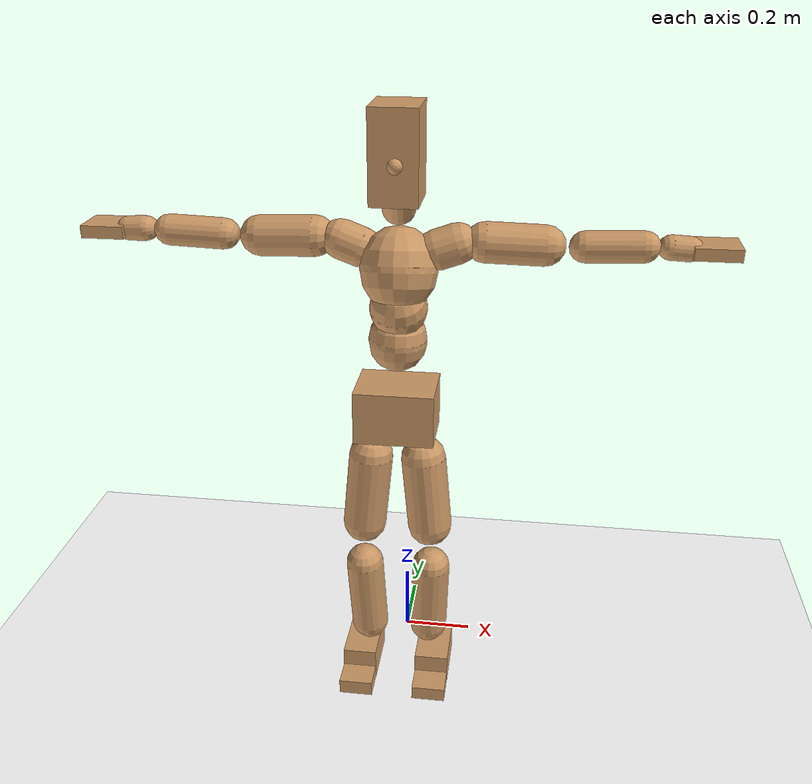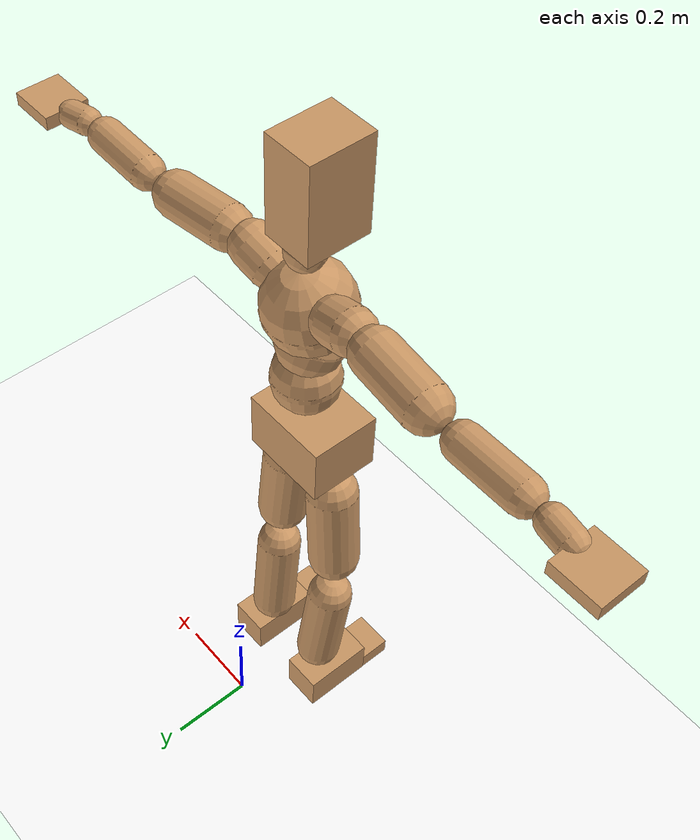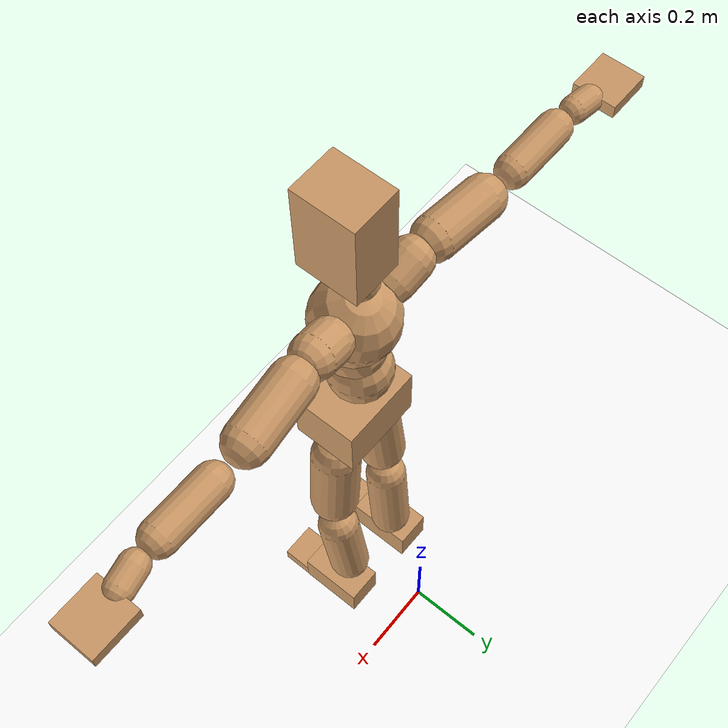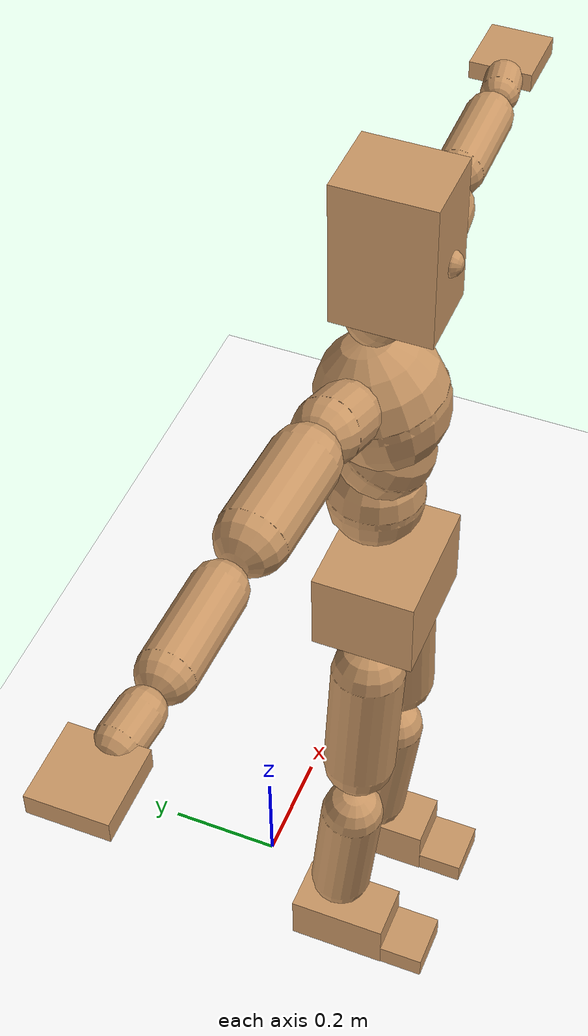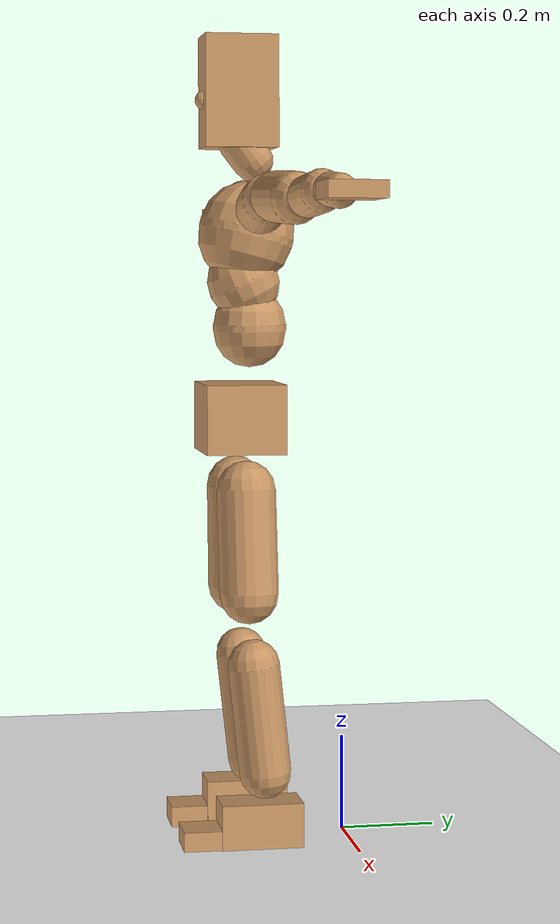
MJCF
<mujoco model="humanoid">
  <option integrator="implicitfast" />

  <visual>
    <global offwidth="1280" offheight="960" />
    <headlight active="1" ambient="0.34 0.34 0.34" diffuse="0.5 0.5 0.5" />
  </visual>

  <default>
    <joint damping="2" stiffness="2" armature="0.01" limited="true" solimplimit="0 .99 .01" />
    <geom condim="1" friction="0.7 0.005 0.0001" solimp=".99 .99 .003" solref="0.015 1" margin="0.001" rgba="0.8 0.6 .4 1" />
    <default class="smplcontact">
      <geom condim="3" friction="1. 0.005 0.0001" solref="0.015 1" solimp="0.98 0.98 0.001" priority="1" />
    </default>
    <default class="stiff_medium">
      <joint stiffness="10" />
    </default>
    <default class="stiff_medium_higher">
      <joint stiffness="50" />
    </default>
    <default class="stiff_high">
      <joint stiffness="100" />
    </default>
  </default>

  <asset>
    <texture type="skybox" builtin="gradient" rgb1="0.99 0.99 0.99" rgb2="0.608 0.828 0.892" width="100" />
    <texture builtin="flat" height="1278" mark="cross" markrgb="1 1 1" name="texgeom" random="0.01" rgb1="0.8 0.6 0.4" rgb2="0.8 0.6 0.4" type="cube" width="127" />
    <texture name="texplane" type="2d" builtin="checker" markrgb="1 1 1" rgb1="0.756 0.772 0.76" rgb2="0.6 0.6 0.6" width="100" height="100" />
    <material name="MatPlane" reflectance="0.5" texture="texplane" texrepeat="1 1" texuniform="true" />
    <material name="geom" texture="texgeom" texuniform="true" />
  </asset>

  <worldbody>
    <light name="tracking_light" pos="0 0 7" dir="0 0 -1" directional="true" cutoff="100" exponent="1" diffuse="1 1 1" specular="0.1 0.1 0.1" mode="trackcom" />
    <camera name="back" pos="0 3 2.4" xyaxes="-1 0 0 0 -1 2" mode="trackcom" />
    <camera name="side" pos="-3 0 2.4" xyaxes="0 -1 0 1 0 2" mode="trackcom" />
    <camera name="front_side" pos="-2.8 -2.8 0.8" xyaxes="0.5 -0.5 0 0.1 0.1 1" mode="trackcom" />
    <geom condim="3" name="floor" pos="0 0 0" rgba="1 1 1 1" size="100 100 .2" type="plane" material="MatPlane" />
    <body name="Pelvis" pos="-0.0018 -0.2233 0.897855" euler="90 0 0">
      <site name="Pelvis" size="0.01" />
      <freejoint name="Pelvis" />
      <geom type="box" pos="-0.0000 -0.0121 -0.0055" size="0.1069 0.0722 0.083" quat="1.0000 0.0000 0.0000 0.0000" density="3165.830099" name="Pelvis" />
      <body name="L_Hip" pos="0.0664629 -0.0874058 -0.00650284">
        <joint name="L_Hip_x" type="hinge" pos="0 0 0" axis="1 0 0" stiffness="9.28351979591837" range="-160.0 22.92" class="stiff_medium" damping="13.660854619087818" armature="0.00893430044860081"/>
        <joint name="L_Hip_y" type="hinge" pos="0 0 0" axis="0 1 0" stiffness="9.29184469387755" range="-70.0 70.0" class="stiff_medium" damping="9.349033519764848" armature="0.0094065743276228"/>
        <joint name="L_Hip_z" type="hinge" pos="0 0 0" axis="0 0 1" stiffness="9.291131326530612" range="-28.65 90.0" class="stiff_medium" damping="9.11061005551236" armature="0.008933596207664094"/>
        <geom type="capsule" density="2040.816327" fromto="0.00659847 -0.0717225 -0.00086067 0.0262026 -0.287081 -0.00344268" size="0.0615" name="L_Hip" />
        <body name="L_Knee" pos="0.0328011 -0.358804 -0.00430335">
          <joint name="L_Knee_x" type="hinge" pos="0 0 0" axis="1 0 0" range="-5.16 171.89" damping="7.336806202404264" armature="0.009013523696102818" stiffness="1.8662486734693875"/>
          <joint name="L_Knee_y" type="hinge" pos="0 0 0" axis="0 1 0" range="-4.58 6.88" damping="7.516495436371979" armature="0.009489231679928578" stiffness="1.8605860816326532"/>
          <joint name="L_Knee_z" type="hinge" pos="0 0 0" axis="0 0 1" range="-6.88 4.58" damping="7.340307293464881" armature="0.009010066891770236" stiffness="1.8687469183673469"/>
          <geom type="capsule" density="1234.567901" fromto="-0.00258201 -0.0761215 -0.00831981 -0.0104237 -0.304486 -0.0334705" size="0.0541" name="L_Knee" />
          <body name="L_Ankle" pos="-0.0130057 -0.380607 -0.0417903">
            <joint name="L_Ankle_x" type="hinge" pos="0 0 0" axis="1 0 0" range="-45.84 45.84" class="stiff_medium" damping="5.700098257743339" armature="0.009437725302420256" stiffness="9.563015306122448"/>
            <joint name="L_Ankle_y" type="hinge" pos="0 0 0" axis="0 1 0" range="-74.48 22.92" class="stiff_medium" damping="2.8532056130353274" armature="0.009458645537196176" stiffness="9.563011530612243"/>
            <joint name="L_Ankle_z" type="hinge" pos="0 0 0" axis="0 0 1" range="-4.58 4.58" class="stiff_medium" damping="5.747564553462339" armature="0.009595570985165112" stiffness="9.563005204081632"/>
            <geom type="box" pos="0.0222818 -0.0228556 0.0231425" size="0.0483 0.0464 0.085" quat="1.0000 0.0000 0.0000 0.0000" density="449.071558" name="L_Ankle" class="smplcontact" />
            <body name="L_Toe" pos="0.0252463 -0.0533615 0.114087">
              <joint name="L_Toe_x" type="hinge" pos="0 0 0" axis="1 0 0" range="-91.67 22.92" armature="0.009674968795953177" damping="1.9237633202422528" stiffness="1.9125980612244897"/>
              <joint name="L_Toe_y" type="hinge" pos="0 0 0" axis="0 1 0" range="-4.58 4.58" armature="0.009770989145862757" damping="1.9332860779221748" stiffness="1.9125981020408165"/>
              <joint name="L_Toe_z" type="hinge" pos="0 0 0" axis="0 0 1" range="-4.58 4.58" armature="0.009965138312341868" damping="1.952399730392578" stiffness="1.9125999999999999"/>
              <geom type="box" pos="-0.0028689 0.00525965 0.0237162" size="0.0478 0.02 0.0496" quat="1.0000 0.0000 0.0000 0.0000" density="423.206892" name="L_Toe" class="smplcontact" />
            </body>
          </body>
        </body>
      </body>
      <body name="R_Hip" pos="-0.0647415 -0.0865452 -0.00411209">
        <joint name="R_Hip_x" type="hinge" pos="0 0 0" axis="1 0 0" stiffness="9.28351979591837" range="-160.0 22.92" class="stiff_medium" damping="13.660854619087818" armature="0.00893430044860081"/>
        <joint name="R_Hip_y" type="hinge" pos="0 0 0" axis="0 1 0" stiffness="9.29184469387755" range="-70.0 70.0" class="stiff_medium" damping="9.349033519764848" armature="0.0094065743276228"/>
        <joint name="R_Hip_z" type="hinge" pos="0 0 0" axis="0 0 1" stiffness="9.291131326530612" range="-90.0 28.65" class="stiff_medium" damping="9.11061005551236" armature="0.008933596207664094"/>
        <geom type="capsule" density="2040.816327" fromto="-0.00736351 -0.0731569 -0.00172134 -0.0292628 -0.292723 -0.00678973" size="0.0606" name="R_Hip" />
        <body name="R_Knee" pos="-0.0366263 -0.36588 -0.00851107">
          <joint name="R_Knee_x" type="hinge" pos="0 0 0" axis="1 0 0" range="-5.16 171.89" damping="7.336806202404264" armature="0.009013523696102818" stiffness="1.8662486734693875"/>
          <joint name="R_Knee_y" type="hinge" pos="0 0 0" axis="0 1 0" range="-6.88 4.58" damping="7.516495436371979" armature="0.009489231679928578" stiffness="1.8605860816326532"/>
          <joint name="R_Knee_z" type="hinge" pos="0 0 0" axis="0 0 1" range="-4.58 6.88" damping="7.340307293464881" armature="0.009010066891770236" stiffness="1.8687469183673469"/>
          <geom type="capsule" density="1234.567901" fromto="0.00306016 -0.0762171 -0.00812855 0.0120494 -0.304773 -0.0323229" size="0.0541" name="R_Knee" />
          <body name="R_Ankle" pos="0.0151095 -0.38099 -0.0404515">
            <joint name="R_Ankle_x" type="hinge" pos="0 0 0" axis="1 0 0" range="-45.84 45.84" class="stiff_medium" damping="5.700098257743339" armature="0.009437725302420256" stiffness="9.563015306122448"/>
            <joint name="R_Ankle_y" type="hinge" pos="0 0 0" axis="0 1 0" range="-22.92 74.48" class="stiff_medium" damping="2.8532056130353274" armature="0.009458645537196176" stiffness="9.563011530612243"/>
            <joint name="R_Ankle_z" type="hinge" pos="0 0 0" axis="0 0 1" range="-4.58 4.58" class="stiff_medium" damping="5.747564553462339" armature="0.009595570985165112" stiffness="9.563005204081632"/>
            <geom type="box" pos="-0.0202736 -0.0166396 0.0244813" size="0.0483 0.0478 0.0865" quat="1.0000 0.0000 0.0000 0.0000" density="434.700981" name="R_Ankle" class="smplcontact" />
            <body name="R_Toe" pos="-0.02429 -0.045998 0.117912">
              <joint name="R_Toe_x" type="hinge" pos="0 0 0" axis="1 0 0" range="-91.67 22.92" armature="0.009674968795953177" damping="1.9237633202422528" stiffness="1.9125980612244897"/>
              <joint name="R_Toe_y" type="hinge" pos="0 0 0" axis="0 1 0" range="-4.58 4.58" armature="0.009770989145862757" damping="1.9332860779221748" stiffness="1.9125981020408165"/>
              <joint name="R_Toe_z" type="hinge" pos="0 0 0" axis="0 0 1" range="-4.58 4.58" armature="0.009965138312341868" damping="1.952399730392578" stiffness="1.9125999999999999"/>
              <geom type="box" pos="0.00401646 0.00430335 0.021708" size="0.0479 0.0216 0.0493" quat="1.0000 0.0000 0.0000 0.0000" density="407.384095" name="R_Toe" class="smplcontact" />
            </body>
          </body>
        </body>
      </body>
      <body name="Torso" pos="-0.0025 0.109 -0.0267">
        <joint name="Torso_x" type="hinge" pos="0 0 0" axis="1 0 0" range="-25.78 57.3" class="stiff_medium" damping="14.77228647764091" armature="0.00982247622892117" stiffness="9.87397306122449"/>
        <joint name="Torso_y" type="hinge" pos="0 0 0" axis="0 1 0" range="-57.3 57.3" class="stiff_high" damping="18.923249226937223" armature="0.00905003816445205" stiffness="98.91929591836734"/>
        <joint name="Torso_z" type="hinge" pos="0 0 0" axis="0 0 1" range="-34.38 34.38" class="stiff_high" damping="19.48030841526063" armature="0.009558714112951557" stiffness="99.25038333333335"/>
        <geom type="capsule" density="2040.816327" fromto="0.0025 0.0608 0.0005 0.003 0.0743 0.0006" size="0.0769" name="Torso" />
        <body name="Spine" pos="0.0055 0.1352 0.0011">
          <joint name="Spine_x" type="hinge" pos="0 0 0" axis="1 0 0" stiffness="9.849707959183673" range="-25.78 57.3" class="stiff_medium" damping="14.729852060353807" armature="0.009790184986826586"/>
          <joint name="Spine_y" type="hinge" pos="0 0 0" axis="0 1 0" stiffness="9.846417142857144" range="-57.3 57.3" class="stiff_high" damping="7.549101858487286" armature="0.009043413019392908"/>
          <joint name="Spine_z" type="hinge" pos="0 0 0" axis="0 0 1" stiffness="19.639612244897954" range="-34.38 34.38" class="stiff_high" damping="11.514411321877962" armature="0.009376010248244441"/>
          <geom type="capsule" density="2040.816327" fromto="0.0007 0.0238 0.0114 0.0008 0.0291 0.014" size="0.0755" name="Spine" />
          <body name="Chest" pos="0.0015 0.0529 0.0254">
            <joint name="Chest_x" type="hinge" pos="0 0 0" axis="1 0 0" stiffness="9.775973673469387" range="-25.78 57.3" class="stiff_medium" damping="14.660745709711167" armature="0.00977168774266896"/>
            <joint name="Chest_y" type="hinge" pos="0 0 0" axis="0 1 0" stiffness="9.564520612244896" range="-57.3 57.3" class="stiff_high" damping="7.439453384186719" armature="0.00904146638969934"/>
            <joint name="Chest_z" type="hinge" pos="0 0 0" axis="0 0 1" stiffness="19.618645306122453" range="-34.38 34.38" class="stiff_high" damping="11.459014201218773" armature="0.009295933396155791"/>
            <geom type="capsule" density="2040.816327" fromto="-0.0009 0.0682 -0.0173 -0.001 0.0833 -0.0212" size="0.1002" name="Chest" />
            <body name="Neck" pos="-0.0028 0.2139 -0.0429">
              <joint name="Neck_x" type="hinge" pos="0 0 0" axis="1 0 0" range="-28.65 57.3" class="stiff_medium_higher" damping="10.000000000000004" armature="0.010000000000000009" stiffness="50.0"/>
              <joint name="Neck_y" type="hinge" pos="0 0 0" axis="0 1 0" range="-40.11 40.11" class="stiff_medium_higher" damping="10.0" armature="0.01" stiffness="50.0"/>
              <joint name="Neck_z" type="hinge" pos="0 0 0" axis="0 0 1" range="-40.11 40.11" class="stiff_medium_higher" damping="10.000000000000007" armature="0.010000000000000014" stiffness="50.0"/>
              <geom type="capsule" density="1000" fromto="0.001 0.013 0.0103 0.0041 0.052 0.0411" size="0.0436" name="Neck" />
              <body name="Head" pos="0.0052 0.065 0.0513">
                <joint name="Head_x" type="hinge" pos="0 0 0" axis="1 0 0" range="-28.65 57.3" class="stiff_medium_higher" damping="2.0000000000000036" armature="0.010000000000000035" stiffness="50.0"/>
                <joint name="Head_y" type="hinge" pos="0 0 0" axis="0 1 0" range="-40.11 40.11" class="stiff_medium_higher" damping="2.0" armature="0.01" stiffness="50.0"/>
                <joint name="Head_z" type="hinge" pos="0 0 0" axis="0 0 1" range="-40.11 40.11" class="stiff_medium_higher" damping="2.0000000000000027" armature="0.010000000000000026" stiffness="50.0"/>
                <geom type="box" pos="-0.0042 0.0876 -0.0116" size="0.0606 0.1154 0.076" quat="1.0000 0.0000 0.0000 0.0000" density="1018.069894" name="Head" />
                <geom type="capsule" name="nose" size="0.02 0.01" pos="0 0.07 0.05" quat="1 0 0 0" mass="0" contype="0" conaffinity="0" />
              </body>
            </body>
            <body name="L_Thorax" pos="0.075648 0.116832 -0.032736">
              <joint name="L_Thorax_x" type="hinge" pos="0 0 0" axis="1 0 0" range="-10.89 4.58" class="stiff_medium_higher" damping="18.7066193762522" armature="0.009340699868726822" stiffness="46.82968265306122"/>
              <joint name="L_Thorax_y" type="hinge" pos="0 0 0" axis="0 1 0" range="-28.65 17.19" class="stiff_medium_higher" damping="18.368990656237077" armature="0.009015985728349149" stiffness="46.78077193877551"/>
              <joint name="L_Thorax_z" type="hinge" pos="0 0 0" axis="0 0 1" range="-31.51 40.11" class="stiff_medium_higher" damping="18.368798240190966" armature="0.009015692419626868" stiffness="46.781313775510206"/>
              <geom type="capsule" density="1000" fromto="0.017472 0.005856 -0.001728 0.069888 0.023424 -0.006816" size="0.0521" name="L_Thorax" />
              <body name="L_Shoulder" pos="0.08736 0.02928 -0.008544">
                <joint name="L_Shoulder_x" type="hinge" pos="0 0 0" axis="1 0 0" range="-97.4 97.4" class="stiff_medium" damping="5.652196546035319" armature="0.009467759926734494" stiffness="9.373132857142858"/>
                <joint name="L_Shoulder_y" type="hinge" pos="0 0 0" axis="0 1 0" range="-108.86 80.21" class="stiff_medium" damping="5.515256411937411" armature="0.009027400422980565" stiffness="9.359792244897957"/>
                <joint name="L_Shoulder_z" type="hinge" pos="0 0 0" axis="0 0 1" range="-97.4 85.94" class="stiff_medium" damping="5.515371822010313" armature="0.00902701907735954" stiffness="9.360579387755102"/>
                <geom type="capsule" density="1000" fromto="0.049824 -0.002496 -0.00528 0.199392 -0.009792 -0.02112" size="0.0517" name="L_Shoulder" />
                <body name="L_Elbow" pos="0.249216 -0.012288 -0.0264">
                  <joint name="L_Elbow_x" type="hinge" pos="0 0 0" axis="1 0 0" range="-17.19 4.58" damping="4.767573790108462" armature="0.009671274463637507" stiffness="1.8801873469387753"/>
                  <joint name="L_Elbow_y" type="hinge" pos="0 0 0" axis="0 1 0" range="-180.0 17.19" damping="4.620152866561199" armature="0.009083033503859765" stiffness="1.880060224489796"/>
                  <joint name="L_Elbow_z" type="hinge" pos="0 0 0" axis="0 0 1" range="-100.84 4.58" damping="4.6199095188541754" armature="0.009081032597715873" stiffness="1.880276387755102"/>
                  <geom type="capsule" density="1000" fromto="0.047808 0.001728 -0.000192 0.191424 0.006912 -0.000864" size="0.0405" name="L_Elbow" />
                  <body name="L_Wrist" pos="0.239232 0.00864 -0.001152">
                    <joint name="L_Wrist_x" type="hinge" pos="0 0 0" axis="1 0 0" range="-180.0 22.92" armature="0.009732164349498522" damping="1.9261586211098274" stiffness="1.906095551020408"/>
                    <joint name="L_Wrist_y" type="hinge" pos="0 0 0" axis="0 1 0" range="-17.19 17.19" armature="0.009273348142390746" damping="1.87920011045997" stiffness="1.9040550408163266"/>
                    <joint name="L_Wrist_z" type="hinge" pos="0 0 0" axis="0 0 1" range="-22.92 22.92" armature="0.009247721722463548" damping="1.8770072606031596" stiffness="1.9048779591836733"/>
                    <geom type="capsule" density="1000" fromto="0.016128 -0.001536 -0.00288 0.064512 -0.00624 -0.01152" size="0.0318" name="L_Wrist" class="smplcontact" />
                    <body name="L_Hand" pos="0.08064 -0.007872 -0.014304">
                      <joint name="L_Hand_x" type="hinge" pos="0 0 0" axis="1 0 0" range="-17.19 17.19" armature="0.009965844130151884" damping="1.9562423535897393" stiffness="1.92"/>
                      <joint name="L_Hand_y" type="hinge" pos="0 0 0" axis="0 1 0" range="-51.57 51.57" armature="0.009586931877272505" damping="1.918692742695568" stiffness="1.92"/>
                      <joint name="L_Hand_z" type="hinge" pos="0 0 0" axis="0 0 1" range="-91.67 91.67" armature="0.009485927639158415" damping="1.9085586743500529" stiffness="1.92"/>
                      <geom type="box" pos="0.047328 0.00096 -0.005568" size="0.0585 0.0158 0.0538" quat="1.0000 0.0000 0.0000 0.0000" density="400.552564" name="L_Hand" class="smplcontact" />
                    </body>
                  </body>
                </body>
              </body>
            </body>
            <body name="R_Thorax" pos="-0.078528 0.114048 -0.037056">
              <joint name="R_Thorax_x" type="hinge" pos="0 0 0" axis="1 0 0" range="-10.89 4.58" class="stiff_medium_higher" damping="18.7066193762522" armature="0.009340699868726822" stiffness="46.82968265306122"/>
              <joint name="R_Thorax_y" type="hinge" pos="0 0 0" axis="0 1 0" range="-17.19 28.65" class="stiff_medium_higher" damping="18.368990656237077" armature="0.009015985728349149" stiffness="46.78077193877551"/>
              <joint name="R_Thorax_z" type="hinge" pos="0 0 0" axis="0 0 1" range="-40.11 31.51" class="stiff_medium_higher" damping="18.368798240190966" armature="0.009015692419626868" stiffness="46.781313775510206"/>
              <geom type="capsule" density="1000" fromto="-0.018432 0.00624 -0.001728 -0.073728 0.02496 -0.007008" size="0.0511" name="R_Thorax" />
              <body name="R_Shoulder" pos="-0.09216 0.031296 -0.008736">
                <joint name="R_Shoulder_x" type="hinge" pos="0 0 0" axis="1 0 0" range="-97.4 97.4" class="stiff_medium" damping="5.652196546035319" armature="0.009467759926734494" stiffness="9.373132857142858"/>
                <joint name="R_Shoulder_y" type="hinge" pos="0 0 0" axis="0 1 0" range="-80.21 108.86" class="stiff_medium" damping="5.515256411937411" armature="0.009027400422980565" stiffness="9.359792244897957"/>
                <joint name="R_Shoulder_z" type="hinge" pos="0 0 0" axis="0 0 1" range="-85.94 97.4" class="stiff_medium" damping="5.515371822010313" armature="0.00902701907735954" stiffness="9.360579387755102"/>
                <geom type="capsule" density="1000" fromto="-0.048672 -0.002592 -0.004128 -0.19488 -0.010272 -0.016416" size="0.0531" name="R_Shoulder" />
                <body name="R_Elbow" pos="-0.243552 -0.012768 -0.020544">
                  <joint name="R_Elbow_x" type="hinge" pos="0 0 0" axis="1 0 0" range="-17.19 4.58" damping="4.767573790108462" armature="0.009671274463637507" stiffness="1.8801873469387753"/>
                  <joint name="R_Elbow_y" type="hinge" pos="0 0 0" axis="0 1 0" range="-17.19 180.0" damping="4.620152866561199" armature="0.009083033503859765" stiffness="1.880060224489796"/>
                  <joint name="R_Elbow_z" type="hinge" pos="0 0 0" axis="0 0 1" range="-4.58 100.84" damping="4.6199095188541754" armature="0.009081032597715873" stiffness="1.880276387755102"/>
                  <geom type="capsule" density="1000" fromto="-0.049056 0.001536 -0.001056 -0.196032 0.005952 -0.004224" size="0.0408" name="R_Elbow" />
                  <body name="R_Wrist" pos="-0.245088 0.007488 -0.005376">
                    <joint name="R_Wrist_x" type="hinge" pos="0 0 0" axis="1 0 0" range="-180.0 22.92" armature="0.009732164349498522" damping="1.9261586211098274" stiffness="1.906095551020408"/>
                    <joint name="R_Wrist_y" type="hinge" pos="0 0 0" axis="0 1 0" range="-17.19 17.19" armature="0.009273348142390746" damping="1.87920011045997" stiffness="1.9040550408163266"/>
                    <joint name="R_Wrist_z" type="hinge" pos="0 0 0" axis="0 0 1" range="-22.92 22.92" armature="0.009247721722463548" damping="1.8770072606031596" stiffness="1.9048779591836733"/>
                    <geom type="capsule" density="1000" fromto="-0.016224 -0.001152 -0.002016 -0.064992 -0.004704 -0.007968" size="0.0326" name="R_Wrist" class="smplcontact" />
                    <body name="R_Hand" pos="-0.081216 -0.005856 -0.009888">
                      <joint name="R_Hand_x" type="hinge" pos="0 0 0" axis="1 0 0" range="-17.19 17.19" armature="0.009965844130151884" damping="1.9562423535897393" stiffness="1.92"/>
                      <joint name="R_Hand_y" type="hinge" pos="0 0 0" axis="0 1 0" range="-51.57 51.57" armature="0.009586931877272505" damping="1.918692742695568" stiffness="1.92"/>
                      <joint name="R_Hand_z" type="hinge" pos="0 0 0" axis="0 0 1" range="-91.67 91.67" armature="0.009485927639158415" damping="1.9085586743500529" stiffness="1.92"/>
                      <geom type="box" pos="-0.044352 -0.000864 -0.007584" size="0.0569 0.0164 0.0546" quat="1.0000 0.0000 0.0000 0.0000" density="403.679611" name="R_Hand" class="smplcontact" />
                    </body>
                  </body>
                </body>
              </body>
            </body>
          </body>
        </body>
      </body>
    </body>
  </worldbody>
  <actuator>
    <general name="L_Hip_x" joint="L_Hip_x" biastype="affine" gainprm="266.7434338009987" biasprm="-199.8971676440023 -167.10335632653064 -1.8214472825450423" ctrllimited="true" ctrlrange="-1 1" forcerange="-334.2067126530613 334.2067126530613" />
    <general name="L_Hip_y" joint="L_Hip_y" biastype="affine" gainprm="204.3383372000811" biasprm="0.0 -167.25320448979593 -1.8698067039529696" ctrllimited="true" ctrlrange="-1 1" forcerange="-334.50640897959187 334.50640897959187" />
    <general name="L_Hip_z" joint="L_Hip_z" biastype="affine" gainprm="173.16344539426913" biasprm="89.53710387642992 -167.24036387755103 -1.822122011102472" ctrllimited="true" ctrlrange="-1 1" forcerange="-334.48072775510207 334.48072775510207" />
    <general name="L_Knee_x" joint="L_Knee_x" biastype="affine" gainprm="259.5107330777126" biasprm="244.38421082206727 -167.96238061224489 -1.834201550601066" ctrllimited="true" ctrlrange="-1 1" forcerange="-335.92476122448977 335.92476122448977" />
    <general name="L_Knee_y" joint="L_Knee_y" biastype="affine" gainprm="16.74650821495283" biasprm="3.3609920501214234 -167.4527473469388 -1.8791238590929948" ctrllimited="true" ctrlrange="-1 1" forcerange="-334.9054946938776 334.9054946938776" />
    <general name="L_Knee_z" joint="L_Knee_z" biastype="affine" gainprm="16.81996115581247" biasprm="-3.3757339143428173 -168.1872226530612 -1.8350768233662202" ctrllimited="true" ctrlrange="-1 1" forcerange="-336.3744453061224 336.3744453061224" />
    <general name="L_Ankle_x" joint="L_Ankle_x" biastype="affine" gainprm="68.85878206427134" biasprm="0.0 -86.06713775510204 -1.9000327525811131" ctrllimited="true" ctrlrange="-1 1" forcerange="-172.13427551020408 172.13427551020408" />
    <general name="L_Ankle_y" joint="L_Ankle_y" biastype="affine" gainprm="73.15491628681501" biasprm="-38.725538847517264 -86.0671037755102 -1.902137075356885" ctrllimited="true" ctrlrange="-1 1" forcerange="-172.1342075510204 172.1342075510204" />
    <general name="L_Ankle_z" joint="L_Ankle_z" biastype="affine" gainprm="6.879862319042894" biasprm="0.0 -86.06704683673469 -1.915854851154113" ctrllimited="true" ctrlrange="-1 1" forcerange="-172.13409367346938 172.13409367346938" />
    <general name="L_Toe_x" joint="L_Toe_x" biastype="affine" gainprm="68.85259344699385" biasprm="-41.30915262658895 -68.85353020408164 -0.7695053280969012" ctrllimited="true" ctrlrange="-1 1" forcerange="-137.70706040816327 137.70706040816327" />
    <general name="L_Toe_y" joint="L_Toe_y" biastype="affine" gainprm="5.503881398323349" biasprm="0.0 -68.85353167346939 -0.77331443116887" ctrllimited="true" ctrlrange="-1 1" forcerange="-137.70706334693878 137.70706334693878" />
    <general name="L_Toe_z" joint="L_Toe_z" biastype="affine" gainprm="5.503886860078348" biasprm="0.0 -68.8536 -0.7809598921570312" ctrllimited="true" ctrlrange="-1 1" forcerange="-137.7072 137.7072" />
    <general name="R_Hip_x" joint="R_Hip_x" biastype="affine" gainprm="266.7434338009987" biasprm="-199.8971676440023 -167.10335632653064 -1.8214472825450423" ctrllimited="true" ctrlrange="-1 1" forcerange="-334.2067126530613 334.2067126530613" />
    <general name="R_Hip_y" joint="R_Hip_y" biastype="affine" gainprm="204.3383372000811" biasprm="0.0 -167.25320448979593 -1.8698067039529696" ctrllimited="true" ctrlrange="-1 1" forcerange="-334.50640897959187 334.50640897959187" />
    <general name="R_Hip_z" joint="R_Hip_z" biastype="affine" gainprm="173.16344539426913" biasprm="-89.53710387642992 -167.24036387755103 -1.822122011102472" ctrllimited="true" ctrlrange="-1 1" forcerange="-334.48072775510207 334.48072775510207" />
    <general name="R_Knee_x" joint="R_Knee_x" biastype="affine" gainprm="259.5107330777126" biasprm="244.38421082206727 -167.96238061224489 -1.834201550601066" ctrllimited="true" ctrlrange="-1 1" forcerange="-335.92476122448977 335.92476122448977" />
    <general name="R_Knee_y" joint="R_Knee_y" biastype="affine" gainprm="16.74650821495283" biasprm="-3.3609920501214234 -167.4527473469388 -1.8791238590929948" ctrllimited="true" ctrlrange="-1 1" forcerange="-334.9054946938776 334.9054946938776" />
    <general name="R_Knee_z" joint="R_Knee_z" biastype="affine" gainprm="16.81996115581247" biasprm="3.3757339143428173 -168.1872226530612 -1.8350768233662202" ctrllimited="true" ctrlrange="-1 1" forcerange="-336.3744453061224 336.3744453061224" />
    <general name="R_Ankle_x" joint="R_Ankle_x" biastype="affine" gainprm="68.85878206427134" biasprm="0.0 -86.06713775510204 -1.9000327525811131" ctrllimited="true" ctrlrange="-1 1" forcerange="-172.13427551020408 172.13427551020408" />
    <general name="R_Ankle_y" joint="R_Ankle_y" biastype="affine" gainprm="73.15491628681501" biasprm="38.725538847517264 -86.0671037755102 -1.902137075356885" ctrllimited="true" ctrlrange="-1 1" forcerange="-172.1342075510204 172.1342075510204" />
    <general name="R_Ankle_z" joint="R_Ankle_z" biastype="affine" gainprm="6.879862319042894" biasprm="0.0 -86.06704683673469 -1.915854851154113" ctrllimited="true" ctrlrange="-1 1" forcerange="-172.13409367346938 172.13409367346938" />
    <general name="R_Toe_x" joint="R_Toe_x" biastype="affine" gainprm="68.85259344699385" biasprm="-41.30915262658895 -68.85353020408164 -0.7695053280969012" ctrllimited="true" ctrlrange="-1 1" forcerange="-137.70706040816327 137.70706040816327" />
    <general name="R_Toe_y" joint="R_Toe_y" biastype="affine" gainprm="5.503881398323349" biasprm="0.0 -68.85353167346939 -0.77331443116887" ctrllimited="true" ctrlrange="-1 1" forcerange="-137.70706334693878 137.70706334693878" />
    <general name="R_Toe_z" joint="R_Toe_z" biastype="affine" gainprm="5.503886860078348" biasprm="0.0 -68.8536 -0.7809598921570312" ctrllimited="true" ctrlrange="-1 1" forcerange="-137.7072 137.7072" />
    <general name="Torso_x" joint="Torso_x" biastype="affine" gainprm="171.80944681746934" biasprm="65.18336258650255 -236.97535346938773 -3.939276394037576" ctrllimited="true" ctrlrange="-1 1" forcerange="-355.46303020408163 355.46303020408163" />
    <general name="Torso_y" joint="Torso_y" biastype="affine" gainprm="237.42379788353907" biasprm="0.0 -237.4063102040816 -3.7846498453874444" ctrllimited="true" ctrlrange="-1 1" forcerange="-356.1094653061224 356.1094653061224" />
    <general name="Torso_z" joint="Torso_z" biastype="affine" gainprm="142.93107972691308" biasprm="0.0 -238.20092000000002 -3.8960616830521264" ctrllimited="true" ctrlrange="-1 1" forcerange="-357.30138000000005 357.30138000000005" />
    <general name="Spine_x" joint="Spine_x" biastype="affine" gainprm="171.3872283515335" biasprm="65.02317570582974 -236.39299102040815 -3.9279605494276817" ctrllimited="true" ctrlrange="-1 1" forcerange="-354.58948653061225 354.58948653061225" />
    <general name="Spine_y" joint="Spine_y" biastype="affine" gainprm="236.3314186477798" biasprm="0.0 -236.31401142857143 -3.774550929243643" ctrllimited="true" ctrlrange="-1 1" forcerange="-354.47101714285714 354.47101714285714" />
    <general name="Spine_z" joint="Spine_z" biastype="affine" gainprm="141.41562426784083" biasprm="0.0 -235.67534693877545 -3.838137107292654" ctrllimited="true" ctrlrange="-1 1" forcerange="-353.5130204081632 353.5130204081632" />
    <general name="Chest_x" joint="Chest_x" biastype="affine" gainprm="170.10423448862727" biasprm="64.53641635870883 -234.62336816326533 -3.909532189256311" ctrllimited="true" ctrlrange="-1 1" forcerange="-351.935052244898 351.935052244898" />
    <general name="Chest_y" joint="Chest_y" biastype="affine" gainprm="229.56540355570053" biasprm="0.0 -229.54849469387753 -3.7197266920933596" ctrllimited="true" ctrlrange="-1 1" forcerange="-344.3227420408163 344.3227420408163" />
    <general name="Chest_z" joint="Chest_z" biastype="affine" gainprm="141.26465118858903" biasprm="0.0 -235.4237436734694 -3.8196714004062575" ctrllimited="true" ctrlrange="-1 1" forcerange="-353.1356155102041 353.1356155102041" />
    <general name="Neck_x" joint="Neck_x" biastype="affine" gainprm="27.00198885760427" biasprm="9.000662952534757 -36.0 -0.8000000000000004" ctrllimited="true" ctrlrange="-1 1" forcerange="-72.0 72.0" />
    <general name="Neck_y" joint="Neck_y" biastype="affine" gainprm="25.20185626709732" biasprm="0.0 -36.0 -0.8" ctrllimited="true" ctrlrange="-1 1" forcerange="-72.0 72.0" />
    <general name="Neck_z" joint="Neck_z" biastype="affine" gainprm="25.20185626709732" biasprm="0.0 -36.0 -0.8000000000000006" ctrllimited="true" ctrlrange="-1 1" forcerange="-72.0 72.0" />
    <general name="Head_x" joint="Head_x" biastype="affine" gainprm="18.001325905069514" biasprm="6.000441968356505 -24.0 -0.8000000000000015" ctrllimited="true" ctrlrange="-1 1" forcerange="-48.0 48.0" />
    <general name="Head_y" joint="Head_y" biastype="affine" gainprm="16.801237511398213" biasprm="0.0 -24.0 -0.8" ctrllimited="true" ctrlrange="-1 1" forcerange="-48.0 48.0" />
    <general name="Head_z" joint="Head_z" biastype="affine" gainprm="16.801237511398213" biasprm="0.0 -24.0 -0.8000000000000012" ctrllimited="true" ctrlrange="-1 1" forcerange="-48.0 48.0" />
    <general name="L_Thorax_x" joint="L_Thorax_x" biastype="affine" gainprm="15.172954031857284" biasprm="-6.188839039497059 -112.39123836734693 -1.4965295501001759" ctrllimited="true" ctrlrange="-1 1" forcerange="-224.78247673469386 224.78247673469386" />
    <general name="L_Thorax_y" joint="L_Thorax_y" biastype="affine" gainprm="44.91284916056686" biasprm="-11.228212290141714 -112.27385265306123 -1.4695192524989664" ctrllimited="true" ctrlrange="-1 1" forcerange="-224.54770530612245 224.54770530612245" />
    <general name="L_Thorax_z" joint="L_Thorax_z" biastype="affine" gainprm="70.1722407006337" biasprm="8.426155683125518 -112.2751530612245 -1.4695038592152772" ctrllimited="true" ctrlrange="-1 1" forcerange="-224.550306122449 224.550306122449" />
    <general name="L_Shoulder_x" joint="L_Shoulder_x" biastype="affine" gainprm="76.48254567111456" biasprm="0.0 -44.99103771428572 -1.5072524122760853" ctrllimited="true" ctrlrange="-1 1" forcerange="-89.98207542857143 89.98207542857143" />
    <general name="L_Shoulder_y" joint="L_Shoulder_y" biastype="affine" gainprm="74.1271738246113" biasprm="-11.232578040276689 -44.927002775510196 -1.4707350431833097" ctrllimited="true" ctrlrange="-1 1" forcerange="-89.85400555102039 89.85400555102039" />
    <general name="L_Shoulder_z" joint="L_Shoulder_z" biastype="affine" gainprm="71.88670325956562" biasprm="-4.493409072513494 -44.93078106122449 -1.4707658192027502" ctrllimited="true" ctrlrange="-1 1" forcerange="-89.86156212244897 89.86156212244897" />
    <general name="L_Elbow_x" joint="L_Elbow_x" biastype="affine" gainprm="12.859066060933895" biasprm="-7.448453055965847 -67.68674448979591 -0.7628118064173539" ctrllimited="true" ctrlrange="-1 1" forcerange="-135.37348897959183 135.37348897959183" />
    <general name="L_Elbow_y" joint="L_Elbow_y" biastype="affine" gainprm="116.46797405880305" biasprm="-96.16182796548368 -67.68216808163265 -0.7392244586497918" ctrllimited="true" ctrlrange="-1 1" forcerange="-135.3643361632653 135.3643361632653" />
    <general name="L_Elbow_z" joint="L_Elbow_z" biastype="affine" gainprm="62.272252732575275" biasprm="-56.861383494950644 -67.68994995918368 -0.7391855230166681" ctrllimited="true" ctrlrange="-1 1" forcerange="-135.37989991836736 135.37989991836736" />
    <general name="L_Wrist_x" joint="L_Wrist_x" biastype="affine" gainprm="20.252010488385803" biasprm="-15.677044192369614 -11.436573306122447 -0.770463448443931" ctrllimited="true" ctrlrange="-1 1" forcerange="-22.873146612244895 22.873146612244895" />
    <general name="L_Wrist_y" joint="L_Wrist_y" biastype="affine" gainprm="3.427551533092514" biasprm="0.0 -11.42433024489796 -0.751680044183988" ctrllimited="true" ctrlrange="-1 1" forcerange="-22.84866048979592 22.84866048979592" />
    <general name="L_Wrist_z" joint="L_Wrist_z" biastype="affine" gainprm="4.572043860353202" biasprm="0.0 -11.429267755102039 -0.7508029042412638" ctrllimited="true" ctrlrange="-1 1" forcerange="-22.858535510204078 22.858535510204078" />
    <general name="L_Hand_x" joint="L_Hand_x" biastype="affine" gainprm="3.4562545737733474" biasprm="0.0 -11.52 -0.7824969414358958" ctrllimited="true" ctrlrange="-1 1" forcerange="-23.04 23.04" />
    <general name="L_Hand_y" joint="L_Hand_y" biastype="affine" gainprm="10.36876372132004" biasprm="0.0 -11.52 -0.7674770970782272" ctrllimited="true" ctrlrange="-1 1" forcerange="-23.04 23.04" />
    <general name="L_Hand_z" joint="L_Hand_z" biastype="affine" gainprm="18.431347107492883" biasprm="0.0 -11.52 -0.7634234697400212" ctrllimited="true" ctrlrange="-1 1" forcerange="-23.04 23.04" />
    <general name="R_Thorax_x" joint="R_Thorax_x" biastype="affine" gainprm="15.172954031857284" biasprm="-6.188839039497059 -112.39123836734693 -1.4965295501001759" ctrllimited="true" ctrlrange="-1 1" forcerange="-224.78247673469386 224.78247673469386" />
    <general name="R_Thorax_y" joint="R_Thorax_y" biastype="affine" gainprm="44.91284916056686" biasprm="11.228212290141709 -112.27385265306123 -1.4695192524989664" ctrllimited="true" ctrlrange="-1 1" forcerange="-224.54770530612245 224.54770530612245" />
    <general name="R_Thorax_z" joint="R_Thorax_z" biastype="affine" gainprm="70.1722407006337" biasprm="-8.426155683125518 -112.2751530612245 -1.4695038592152772" ctrllimited="true" ctrlrange="-1 1" forcerange="-224.550306122449 224.550306122449" />
    <general name="R_Shoulder_x" joint="R_Shoulder_x" biastype="affine" gainprm="76.48254567111456" biasprm="0.0 -44.99103771428572 -1.5072524122760853" ctrllimited="true" ctrlrange="-1 1" forcerange="-89.98207542857143 89.98207542857143" />
    <general name="R_Shoulder_y" joint="R_Shoulder_y" biastype="affine" gainprm="74.1271738246113" biasprm="11.232578040276689 -44.927002775510196 -1.4707350431833097" ctrllimited="true" ctrlrange="-1 1" forcerange="-89.85400555102039 89.85400555102039" />
    <general name="R_Shoulder_z" joint="R_Shoulder_z" biastype="affine" gainprm="71.88670325956562" biasprm="4.493409072513484 -44.93078106122449 -1.4707658192027502" ctrllimited="true" ctrlrange="-1 1" forcerange="-89.86156212244897 89.86156212244897" />
    <general name="R_Elbow_x" joint="R_Elbow_x" biastype="affine" gainprm="12.859066060933895" biasprm="-7.448453055965847 -67.68674448979591 -0.7628118064173539" ctrllimited="true" ctrlrange="-1 1" forcerange="-135.37348897959183 135.37348897959183" />
    <general name="R_Elbow_y" joint="R_Elbow_y" biastype="affine" gainprm="116.46797405880305" biasprm="96.16182796548368 -67.68216808163265 -0.7392244586497918" ctrllimited="true" ctrlrange="-1 1" forcerange="-135.3643361632653 135.3643361632653" />
    <general name="R_Elbow_z" joint="R_Elbow_z" biastype="affine" gainprm="62.272252732575275" biasprm="56.86138349495064 -67.68994995918368 -0.7391855230166681" ctrllimited="true" ctrlrange="-1 1" forcerange="-135.37989991836736 135.37989991836736" />
    <general name="R_Wrist_x" joint="R_Wrist_x" biastype="affine" gainprm="20.252010488385803" biasprm="-15.677044192369614 -11.436573306122447 -0.770463448443931" ctrllimited="true" ctrlrange="-1 1" forcerange="-22.873146612244895 22.873146612244895" />
    <general name="R_Wrist_y" joint="R_Wrist_y" biastype="affine" gainprm="3.427551533092514" biasprm="0.0 -11.42433024489796 -0.751680044183988" ctrllimited="true" ctrlrange="-1 1" forcerange="-22.84866048979592 22.84866048979592" />
    <general name="R_Wrist_z" joint="R_Wrist_z" biastype="affine" gainprm="4.572043860353202" biasprm="0.0 -11.429267755102039 -0.7508029042412638" ctrllimited="true" ctrlrange="-1 1" forcerange="-22.858535510204078 22.858535510204078" />
    <general name="R_Hand_x" joint="R_Hand_x" biastype="affine" gainprm="3.4562545737733474" biasprm="0.0 -11.52 -0.7824969414358958" ctrllimited="true" ctrlrange="-1 1" forcerange="-23.04 23.04" />
    <general name="R_Hand_y" joint="R_Hand_y" biastype="affine" gainprm="10.36876372132004" biasprm="0.0 -11.52 -0.7674770970782272" ctrllimited="true" ctrlrange="-1 1" forcerange="-23.04 23.04" />
    <general name="R_Hand_z" joint="R_Hand_z" biastype="affine" gainprm="18.431347107492883" biasprm="0.0 -11.52 -0.7634234697400212" ctrllimited="true" ctrlrange="-1 1" forcerange="-23.04 23.04" />
  </actuator>
  <contact>
    <exclude body1="Torso" body2="Chest" />
    <exclude body1="Head" body2="Chest" />
    <exclude body1="R_Knee" body2="R_Toe" />
    <exclude body1="R_Knee" body2="L_Ankle" />
    <exclude body1="R_Knee" body2="L_Toe" />
    <exclude body1="L_Knee" body2="L_Toe" />
    <exclude body1="L_Knee" body2="R_Ankle" />
    <exclude body1="L_Knee" body2="R_Toe" />
    <exclude body1="L_Shoulder" body2="Chest" />
    <exclude body1="R_Shoulder" body2="Chest" />
  </contact>
  <sensor>
    <framelinvel name="sensor_Pelvis_framelinvel" objtype="xbody" objname="Pelvis" />
    <framelinvel name="sensor_L_Hip_framelinvel" objtype="xbody" objname="L_Hip" />
    <framelinvel name="sensor_L_Knee_framelinvel" objtype="xbody" objname="L_Knee" />
    <framelinvel name="sensor_L_Ankle_framelinvel" objtype="xbody" objname="L_Ankle" />
    <framelinvel name="sensor_L_Toe_framelinvel" objtype="xbody" objname="L_Toe" />
    <framelinvel name="sensor_R_Hip_framelinvel" objtype="xbody" objname="R_Hip" />
    <framelinvel name="sensor_R_Knee_framelinvel" objtype="xbody" objname="R_Knee" />
    <framelinvel name="sensor_R_Ankle_framelinvel" objtype="xbody" objname="R_Ankle" />
    <framelinvel name="sensor_R_Toe_framelinvel" objtype="xbody" objname="R_Toe" />
    <framelinvel name="sensor_Torso_framelinvel" objtype="xbody" objname="Torso" />
    <framelinvel name="sensor_Spine_framelinvel" objtype="xbody" objname="Spine" />
    <framelinvel name="sensor_Chest_framelinvel" objtype="xbody" objname="Chest" />
    <framelinvel name="sensor_Neck_framelinvel" objtype="xbody" objname="Neck" />
    <framelinvel name="sensor_Head_framelinvel" objtype="xbody" objname="Head" />
    <framelinvel name="sensor_L_Thorax_framelinvel" objtype="xbody" objname="L_Thorax" />
    <framelinvel name="sensor_L_Shoulder_framelinvel" objtype="xbody" objname="L_Shoulder" />
    <framelinvel name="sensor_L_Elbow_framelinvel" objtype="xbody" objname="L_Elbow" />
    <framelinvel name="sensor_L_Wrist_framelinvel" objtype="xbody" objname="L_Wrist" />
    <framelinvel name="sensor_L_Hand_framelinvel" objtype="xbody" objname="L_Hand" />
    <framelinvel name="sensor_R_Thorax_framelinvel" objtype="xbody" objname="R_Thorax" />
    <framelinvel name="sensor_R_Shoulder_framelinvel" objtype="xbody" objname="R_Shoulder" />
    <framelinvel name="sensor_R_Elbow_framelinvel" objtype="xbody" objname="R_Elbow" />
    <framelinvel name="sensor_R_Wrist_framelinvel" objtype="xbody" objname="R_Wrist" />
    <framelinvel name="sensor_R_Hand_framelinvel" objtype="xbody" objname="R_Hand" />
    <frameangvel name="sensor_Pelvis_frameangvel" objtype="xbody" objname="Pelvis" />
    <frameangvel name="sensor_L_Hip_frameangvel" objtype="xbody" objname="L_Hip" />
    <frameangvel name="sensor_L_Knee_frameangvel" objtype="xbody" objname="L_Knee" />
    <frameangvel name="sensor_L_Ankle_frameangvel" objtype="xbody" objname="L_Ankle" />
    <frameangvel name="sensor_L_Toe_frameangvel" objtype="xbody" objname="L_Toe" />
    <frameangvel name="sensor_R_Hip_frameangvel" objtype="xbody" objname="R_Hip" />
    <frameangvel name="sensor_R_Knee_frameangvel" objtype="xbody" objname="R_Knee" />
    <frameangvel name="sensor_R_Ankle_frameangvel" objtype="xbody" objname="R_Ankle" />
    <frameangvel name="sensor_R_Toe_frameangvel" objtype="xbody" objname="R_Toe" />
    <frameangvel name="sensor_Torso_frameangvel" objtype="xbody" objname="Torso" />
    <frameangvel name="sensor_Spine_frameangvel" objtype="xbody" objname="Spine" />
    <frameangvel name="sensor_Chest_frameangvel" objtype="xbody" objname="Chest" />
    <frameangvel name="sensor_Neck_frameangvel" objtype="xbody" objname="Neck" />
    <frameangvel name="sensor_Head_frameangvel" objtype="xbody" objname="Head" />
    <frameangvel name="sensor_L_Thorax_frameangvel" objtype="xbody" objname="L_Thorax" />
    <frameangvel name="sensor_L_Shoulder_frameangvel" objtype="xbody" objname="L_Shoulder" />
    <frameangvel name="sensor_L_Elbow_frameangvel" objtype="xbody" objname="L_Elbow" />
    <frameangvel name="sensor_L_Wrist_frameangvel" objtype="xbody" objname="L_Wrist" />
    <frameangvel name="sensor_L_Hand_frameangvel" objtype="xbody" objname="L_Hand" />
    <frameangvel name="sensor_R_Thorax_frameangvel" objtype="xbody" objname="R_Thorax" />
    <frameangvel name="sensor_R_Shoulder_frameangvel" objtype="xbody" objname="R_Shoulder" />
    <frameangvel name="sensor_R_Elbow_frameangvel" objtype="xbody" objname="R_Elbow" />
    <frameangvel name="sensor_R_Wrist_frameangvel" objtype="xbody" objname="R_Wrist" />
    <frameangvel name="sensor_R_Hand_frameangvel" objtype="xbody" objname="R_Hand" />
    <subtreelinvel name="Chest_subtreelinvel" body="Chest" />
    <gyro name="Pelvis_gyro" site="Pelvis" />
  </sensor>
</mujoco>
